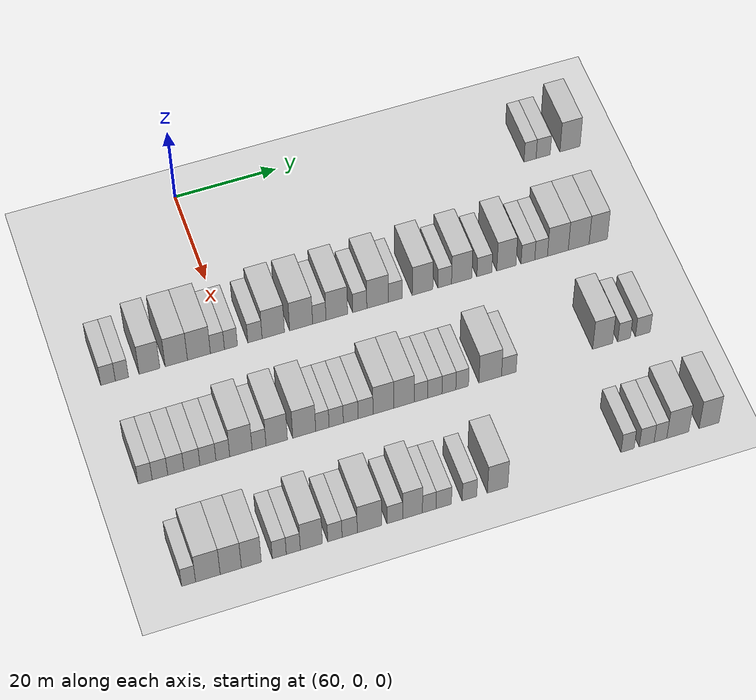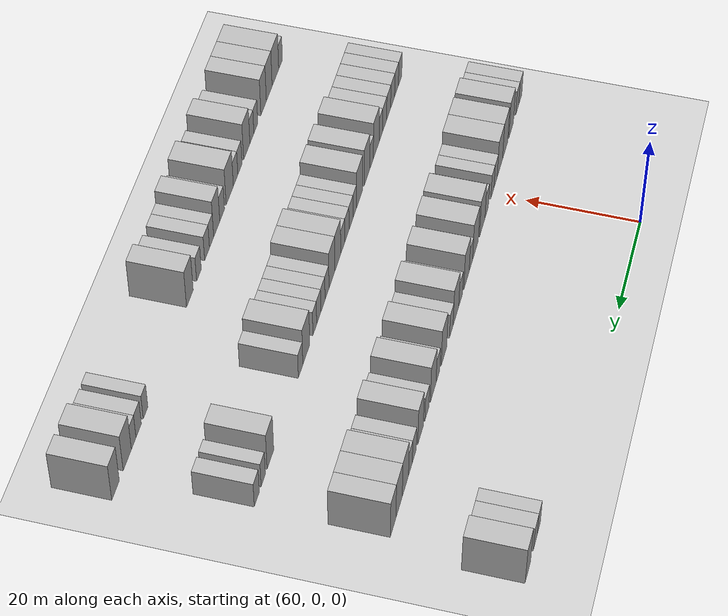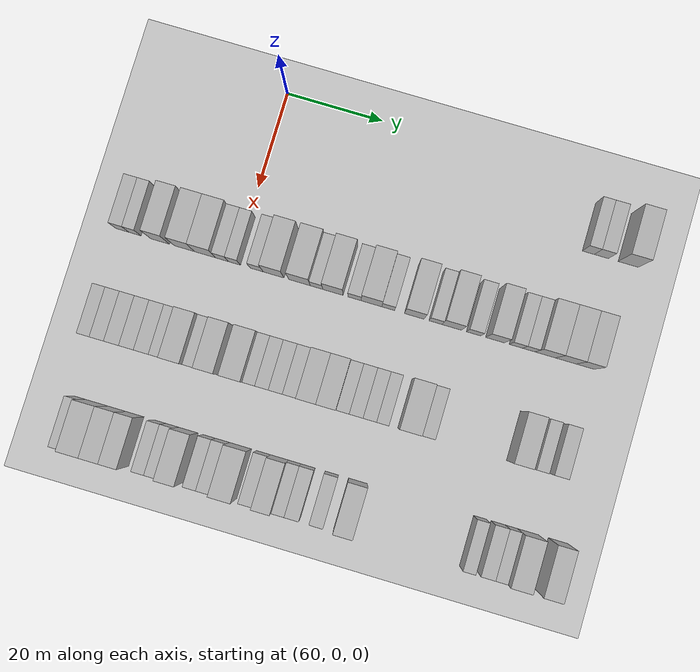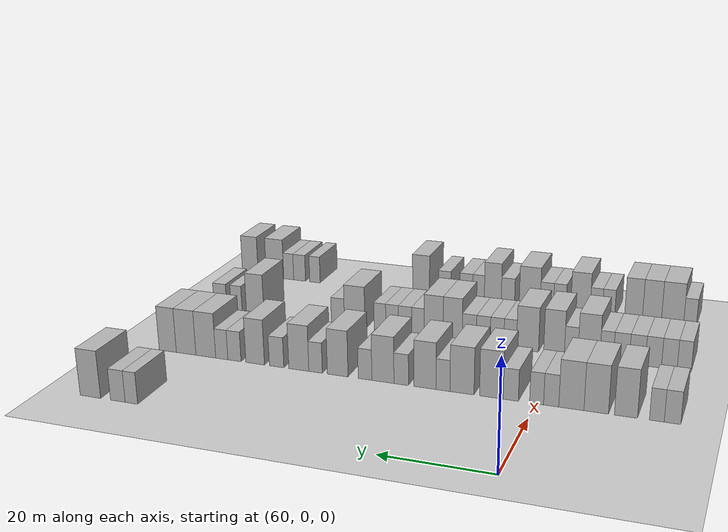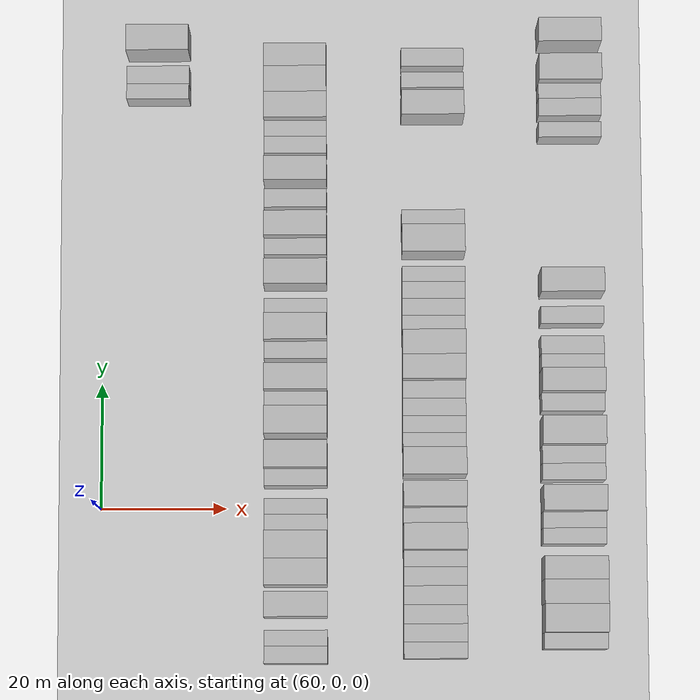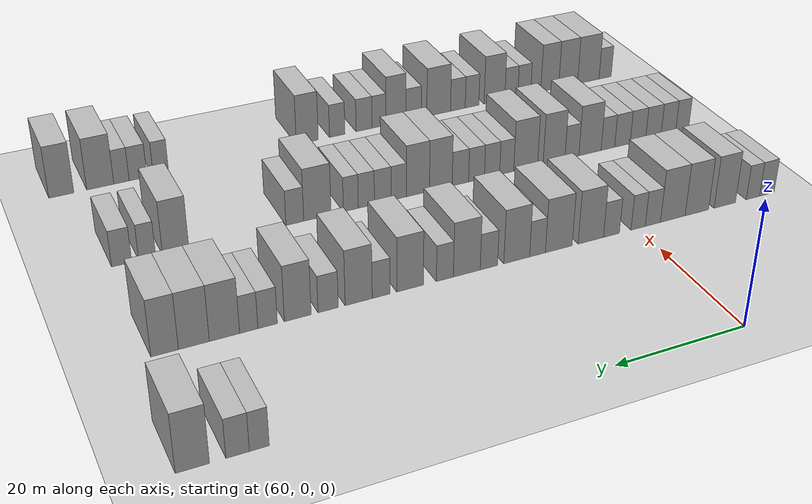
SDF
<sdf version="1.6">
 <world name="default">
  <include>
   <name>ground_plane_2</name>
   <uri>model://HANNAS_ground_plane</uri>
   <pose>100 0 0  0 0 0</pose>
  </include>
  <model name="building_504">
   <static>1</static>
   <pose>69.0000 66.6545 0 0.000000 0.000000 0.000000</pose>
   <link name="link">
    <pose>0 0 3.00 0 0 0</pose>
    <collision name="collision"><geometry><box><size>10.0000 2.4754 6.0000</size></box></geometry></collision>
    <visual name="visual">
     <cast_shadows>0</cast_shadows>
     <geometry><box><size>10.0000 2.4754 6.0000</size></box></geometry>
     <material>
      <script>
       <uri>model://HANNAS_wall/materials/scripts</uri>
       <uri>model://HANNAS_wall/materials/textures</uri>
       <name>vrc/HANNAS_wall</name>
      </script>
     </material>
    </visual>
   </link>
  </model>
  <model name="building_505">
   <static>1</static>
   <pose>69.0000 69.3427 0 0.000000 0.000000 0.000000</pose>
   <link name="link">
    <pose>0 0 3.00 0 0 0</pose>
    <collision name="collision"><geometry><box><size>10.0000 2.9010 6.0000</size></box></geometry></collision>
    <visual name="visual">
     <cast_shadows>0</cast_shadows>
     <geometry><box><size>10.0000 2.9010 6.0000</size></box></geometry>
     <material>
      <script>
       <uri>model://HANNAS_wall/materials/scripts</uri>
       <uri>model://HANNAS_wall/materials/textures</uri>
       <name>vrc/HANNAS_wall</name>
      </script>
     </material>
    </visual>
   </link>
  </model>
  <model name="building_506">
   <static>1</static>
   <pose>69.0000 74.8574 0 0.000000 0.000000 0.000000</pose>
   <link name="link">
    <pose>0 0 4.50 0 0 0</pose>
    <collision name="collision"><geometry><box><size>10.0000 4.1285 9.0000</size></box></geometry></collision>
    <visual name="visual">
     <cast_shadows>0</cast_shadows>
     <geometry><box><size>10.0000 4.1285 9.0000</size></box></geometry>
     <material>
      <script>
       <uri>model://HANNAS_wall/materials/scripts</uri>
       <uri>model://HANNAS_wall/materials/textures</uri>
       <name>vrc/HANNAS_wall</name>
      </script>
     </material>
    </visual>
   </link>
  </model>
  <model name="building_661">
   <static>1</static>
   <pose>91.0000 -23.3035 0 0.000000 0.000000 0.000000</pose>
   <link name="link">
    <pose>0 0 3.00 0 0 0</pose>
    <collision name="collision"><geometry><box><size>10.0000 2.7436 6.0000</size></box></geometry></collision>
    <visual name="visual">
     <cast_shadows>0</cast_shadows>
     <geometry><box><size>10.0000 2.7436 6.0000</size></box></geometry>
     <material>
      <script>
       <uri>model://HANNAS_wall/materials/scripts</uri>
       <uri>model://HANNAS_wall/materials/textures</uri>
       <name>vrc/HANNAS_wall</name>
      </script>
     </material>
    </visual>
   </link>
  </model>
  <model name="building_662">
   <static>1</static>
   <pose>91.0000 -20.6948 0 0.000000 0.000000 0.000000</pose>
   <link name="link">
    <pose>0 0 3.00 0 0 0</pose>
    <collision name="collision"><geometry><box><size>10.0000 2.4738 6.0000</size></box></geometry></collision>
    <visual name="visual">
     <cast_shadows>0</cast_shadows>
     <geometry><box><size>10.0000 2.4738 6.0000</size></box></geometry>
     <material>
      <script>
       <uri>model://HANNAS_wall/materials/scripts</uri>
       <uri>model://HANNAS_wall/materials/textures</uri>
       <name>vrc/HANNAS_wall</name>
      </script>
     </material>
    </visual>
   </link>
  </model>
  <model name="building_663">
   <static>1</static>
   <pose>91.0000 -15.4986 0 0.000000 0.000000 0.000000</pose>
   <link name="link">
    <pose>0 0 4.50 0 0 0</pose>
    <collision name="collision"><geometry><box><size>10.0000 3.9186 9.0000</size></box></geometry></collision>
    <visual name="visual">
     <cast_shadows>0</cast_shadows>
     <geometry><box><size>10.0000 3.9186 9.0000</size></box></geometry>
     <material>
      <script>
       <uri>model://HANNAS_wall/materials/scripts</uri>
       <uri>model://HANNAS_wall/materials/textures</uri>
       <name>vrc/HANNAS_wall</name>
      </script>
     </material>
    </visual>
   </link>
  </model>
  <model name="building_664">
   <static>1</static>
   <pose>91.0000 -10.4303 0 0.000000 0.000000 0.000000</pose>
   <link name="link">
    <pose>0 0 4.50 0 0 0</pose>
    <collision name="collision"><geometry><box><size>10.0000 4.2181 9.0000</size></box></geometry></collision>
    <visual name="visual">
     <cast_shadows>0</cast_shadows>
     <geometry><box><size>10.0000 4.2181 9.0000</size></box></geometry>
     <material>
      <script>
       <uri>model://HANNAS_wall/materials/scripts</uri>
       <uri>model://HANNAS_wall/materials/textures</uri>
       <name>vrc/HANNAS_wall</name>
      </script>
     </material>
    </visual>
   </link>
  </model>
  <model name="building_665">
   <static>1</static>
   <pose>91.0000 -6.1336 0 0.000000 0.000000 0.000000</pose>
   <link name="link">
    <pose>0 0 4.50 0 0 0</pose>
    <collision name="collision"><geometry><box><size>10.0000 4.3752 9.0000</size></box></geometry></collision>
    <visual name="visual">
     <cast_shadows>0</cast_shadows>
     <geometry><box><size>10.0000 4.3752 9.0000</size></box></geometry>
     <material>
      <script>
       <uri>model://HANNAS_wall/materials/scripts</uri>
       <uri>model://HANNAS_wall/materials/textures</uri>
       <name>vrc/HANNAS_wall</name>
      </script>
     </material>
    </visual>
   </link>
  </model>
  <model name="building_666">
   <static>1</static>
   <pose>91.0000 -2.6112 0 0.000000 0.000000 0.000000</pose>
   <link name="link">
    <pose>0 0 3.00 0 0 0</pose>
    <collision name="collision"><geometry><box><size>10.0000 2.6696 6.0000</size></box></geometry></collision>
    <visual name="visual">
     <cast_shadows>0</cast_shadows>
     <geometry><box><size>10.0000 2.6696 6.0000</size></box></geometry>
     <material>
      <script>
       <uri>model://HANNAS_wall/materials/scripts</uri>
       <uri>model://HANNAS_wall/materials/textures</uri>
       <name>vrc/HANNAS_wall</name>
      </script>
     </material>
    </visual>
   </link>
  </model>
  <model name="building_667">
   <static>1</static>
   <pose>91.0000 -0.0387 0 0.000000 0.000000 0.000000</pose>
   <link name="link">
    <pose>0 0 3.00 0 0 0</pose>
    <collision name="collision"><geometry><box><size>10.0000 2.4754 6.0000</size></box></geometry></collision>
    <visual name="visual">
     <cast_shadows>0</cast_shadows>
     <geometry><box><size>10.0000 2.4754 6.0000</size></box></geometry>
     <material>
      <script>
       <uri>model://HANNAS_wall/materials/scripts</uri>
       <uri>model://HANNAS_wall/materials/textures</uri>
       <name>vrc/HANNAS_wall</name>
      </script>
     </material>
    </visual>
   </link>
  </model>
  <model name="building_668">
   <static>1</static>
   <pose>91.0000 4.5630 0 0.000000 0.000000 0.000000</pose>
   <link name="link">
    <pose>0 0 3.00 0 0 0</pose>
    <collision name="collision"><geometry><box><size>10.0000 2.7281 6.0000</size></box></geometry></collision>
    <visual name="visual">
     <cast_shadows>0</cast_shadows>
     <geometry><box><size>10.0000 2.7281 6.0000</size></box></geometry>
     <material>
      <script>
       <uri>model://HANNAS_wall/materials/scripts</uri>
       <uri>model://HANNAS_wall/materials/textures</uri>
       <name>vrc/HANNAS_wall</name>
      </script>
     </material>
    </visual>
   </link>
  </model>
  <model name="building_669">
   <static>1</static>
   <pose>91.0000 8.0719 0 0.000000 0.000000 0.000000</pose>
   <link name="link">
    <pose>0 0 4.50 0 0 0</pose>
    <collision name="collision"><geometry><box><size>10.0000 4.2898 9.0000</size></box></geometry></collision>
    <visual name="visual">
     <cast_shadows>0</cast_shadows>
     <geometry><box><size>10.0000 4.2898 9.0000</size></box></geometry>
     <material>
      <script>
       <uri>model://HANNAS_wall/materials/scripts</uri>
       <uri>model://HANNAS_wall/materials/textures</uri>
       <name>vrc/HANNAS_wall</name>
      </script>
     </material>
    </visual>
   </link>
  </model>
  <model name="building_670">
   <static>1</static>
   <pose>91.0000 13.4341 0 0.000000 0.000000 0.000000</pose>
   <link name="link">
    <pose>0 0 4.50 0 0 0</pose>
    <collision name="collision"><geometry><box><size>10.0000 4.4345 9.0000</size></box></geometry></collision>
    <visual name="visual">
     <cast_shadows>0</cast_shadows>
     <geometry><box><size>10.0000 4.4345 9.0000</size></box></geometry>
     <material>
      <script>
       <uri>model://HANNAS_wall/materials/scripts</uri>
       <uri>model://HANNAS_wall/materials/textures</uri>
       <name>vrc/HANNAS_wall</name>
      </script>
     </material>
    </visual>
   </link>
  </model>
  <model name="building_671">
   <static>1</static>
   <pose>91.0000 16.9446 0 0.000000 0.000000 0.000000</pose>
   <link name="link">
    <pose>0 0 3.00 0 0 0</pose>
    <collision name="collision"><geometry><box><size>10.0000 2.5867 6.0000</size></box></geometry></collision>
    <visual name="visual">
     <cast_shadows>0</cast_shadows>
     <geometry><box><size>10.0000 2.5867 6.0000</size></box></geometry>
     <material>
      <script>
       <uri>model://HANNAS_wall/materials/scripts</uri>
       <uri>model://HANNAS_wall/materials/textures</uri>
       <name>vrc/HANNAS_wall</name>
      </script>
     </material>
    </visual>
   </link>
  </model>
  <model name="building_672">
   <static>1</static>
   <pose>91.0000 20.3265 0 0.000000 0.000000 0.000000</pose>
   <link name="link">
    <pose>0 0 4.50 0 0 0</pose>
    <collision name="collision"><geometry><box><size>10.0000 4.1771 9.0000</size></box></geometry></collision>
    <visual name="visual">
     <cast_shadows>0</cast_shadows>
     <geometry><box><size>10.0000 4.1771 9.0000</size></box></geometry>
     <material>
      <script>
       <uri>model://HANNAS_wall/materials/scripts</uri>
       <uri>model://HANNAS_wall/materials/textures</uri>
       <name>vrc/HANNAS_wall</name>
      </script>
     </material>
    </visual>
   </link>
  </model>
  <model name="building_673">
   <static>1</static>
   <pose>91.0000 24.7904 0 0.000000 0.000000 0.000000</pose>
   <link name="link">
    <pose>0 0 3.00 0 0 0</pose>
    <collision name="collision"><geometry><box><size>10.0000 2.7507 6.0000</size></box></geometry></collision>
    <visual name="visual">
     <cast_shadows>0</cast_shadows>
     <geometry><box><size>10.0000 2.7507 6.0000</size></box></geometry>
     <material>
      <script>
       <uri>model://HANNAS_wall/materials/scripts</uri>
       <uri>model://HANNAS_wall/materials/textures</uri>
       <name>vrc/HANNAS_wall</name>
      </script>
     </material>
    </visual>
   </link>
  </model>
  <model name="building_674">
   <static>1</static>
   <pose>91.0000 28.2809 0 0.000000 0.000000 0.000000</pose>
   <link name="link">
    <pose>0 0 4.50 0 0 0</pose>
    <collision name="collision"><geometry><box><size>10.0000 4.2302 9.0000</size></box></geometry></collision>
    <visual name="visual">
     <cast_shadows>0</cast_shadows>
     <geometry><box><size>10.0000 4.2302 9.0000</size></box></geometry>
     <material>
      <script>
       <uri>model://HANNAS_wall/materials/scripts</uri>
       <uri>model://HANNAS_wall/materials/textures</uri>
       <name>vrc/HANNAS_wall</name>
      </script>
     </material>
    </visual>
   </link>
  </model>
  <model name="building_675">
   <static>1</static>
   <pose>91.0000 31.7131 0 0.000000 0.000000 0.000000</pose>
   <link name="link">
    <pose>0 0 3.00 0 0 0</pose>
    <collision name="collision"><geometry><box><size>10.0000 2.6343 6.0000</size></box></geometry></collision>
    <visual name="visual">
     <cast_shadows>0</cast_shadows>
     <geometry><box><size>10.0000 2.6343 6.0000</size></box></geometry>
     <material>
      <script>
       <uri>model://HANNAS_wall/materials/scripts</uri>
       <uri>model://HANNAS_wall/materials/textures</uri>
       <name>vrc/HANNAS_wall</name>
      </script>
     </material>
    </visual>
   </link>
  </model>
  <model name="building_676">
   <static>1</static>
   <pose>91.0000 37.0513 0 0.000000 0.000000 0.000000</pose>
   <link name="link">
    <pose>0 0 4.50 0 0 0</pose>
    <collision name="collision"><geometry><box><size>10.0000 4.0421 9.0000</size></box></geometry></collision>
    <visual name="visual">
     <cast_shadows>0</cast_shadows>
     <geometry><box><size>10.0000 4.0421 9.0000</size></box></geometry>
     <material>
      <script>
       <uri>model://HANNAS_wall/materials/scripts</uri>
       <uri>model://HANNAS_wall/materials/textures</uri>
       <name>vrc/HANNAS_wall</name>
      </script>
     </material>
    </visual>
   </link>
  </model>
  <model name="building_677">
   <static>1</static>
   <pose>91.0000 41.4131 0 0.000000 0.000000 0.000000</pose>
   <link name="link">
    <pose>0 0 3.00 0 0 0</pose>
    <collision name="collision"><geometry><box><size>10.0000 2.6816 6.0000</size></box></geometry></collision>
    <visual name="visual">
     <cast_shadows>0</cast_shadows>
     <geometry><box><size>10.0000 2.6816 6.0000</size></box></geometry>
     <material>
      <script>
       <uri>model://HANNAS_wall/materials/scripts</uri>
       <uri>model://HANNAS_wall/materials/textures</uri>
       <name>vrc/HANNAS_wall</name>
      </script>
     </material>
    </visual>
   </link>
  </model>
  <model name="building_678">
   <static>1</static>
   <pose>91.0000 44.7580 0 0.000000 0.000000 0.000000</pose>
   <link name="link">
    <pose>0 0 4.50 0 0 0</pose>
    <collision name="collision"><geometry><box><size>10.0000 4.0081 9.0000</size></box></geometry></collision>
    <visual name="visual">
     <cast_shadows>0</cast_shadows>
     <geometry><box><size>10.0000 4.0081 9.0000</size></box></geometry>
     <material>
      <script>
       <uri>model://HANNAS_wall/materials/scripts</uri>
       <uri>model://HANNAS_wall/materials/textures</uri>
       <name>vrc/HANNAS_wall</name>
      </script>
     </material>
    </visual>
   </link>
  </model>
  <model name="building_679">
   <static>1</static>
   <pose>91.0000 49.2320 0 0.000000 0.000000 0.000000</pose>
   <link name="link">
    <pose>0 0 3.00 0 0 0</pose>
    <collision name="collision"><geometry><box><size>10.0000 2.9400 6.0000</size></box></geometry></collision>
    <visual name="visual">
     <cast_shadows>0</cast_shadows>
     <geometry><box><size>10.0000 2.9400 6.0000</size></box></geometry>
     <material>
      <script>
       <uri>model://HANNAS_wall/materials/scripts</uri>
       <uri>model://HANNAS_wall/materials/textures</uri>
       <name>vrc/HANNAS_wall</name>
      </script>
     </material>
    </visual>
   </link>
  </model>
  <model name="building_680">
   <static>1</static>
   <pose>91.0000 53.6119 0 0.000000 0.000000 0.000000</pose>
   <link name="link">
    <pose>0 0 4.50 0 0 0</pose>
    <collision name="collision"><geometry><box><size>10.0000 3.8197 9.0000</size></box></geometry></collision>
    <visual name="visual">
     <cast_shadows>0</cast_shadows>
     <geometry><box><size>10.0000 3.8197 9.0000</size></box></geometry>
     <material>
      <script>
       <uri>model://HANNAS_wall/materials/scripts</uri>
       <uri>model://HANNAS_wall/materials/textures</uri>
       <name>vrc/HANNAS_wall</name>
      </script>
     </material>
    </visual>
   </link>
  </model>
  <model name="building_681">
   <static>1</static>
   <pose>91.0000 57.8907 0 0.000000 0.000000 0.000000</pose>
   <link name="link">
    <pose>0 0 3.00 0 0 0</pose>
    <collision name="collision"><geometry><box><size>10.0000 2.7380 6.0000</size></box></geometry></collision>
    <visual name="visual">
     <cast_shadows>0</cast_shadows>
     <geometry><box><size>10.0000 2.7380 6.0000</size></box></geometry>
     <material>
      <script>
       <uri>model://HANNAS_wall/materials/scripts</uri>
       <uri>model://HANNAS_wall/materials/textures</uri>
       <name>vrc/HANNAS_wall</name>
      </script>
     </material>
    </visual>
   </link>
  </model>
  <model name="building_682">
   <static>1</static>
   <pose>91.0000 60.5299 0 0.000000 0.000000 0.000000</pose>
   <link name="link">
    <pose>0 0 3.00 0 0 0</pose>
    <collision name="collision"><geometry><box><size>10.0000 2.5405 6.0000</size></box></geometry></collision>
    <visual name="visual">
     <cast_shadows>0</cast_shadows>
     <geometry><box><size>10.0000 2.5405 6.0000</size></box></geometry>
     <material>
      <script>
       <uri>model://HANNAS_wall/materials/scripts</uri>
       <uri>model://HANNAS_wall/materials/textures</uri>
       <name>vrc/HANNAS_wall</name>
      </script>
     </material>
    </visual>
   </link>
  </model>
  <model name="building_683">
   <static>1</static>
   <pose>91.0000 63.8856 0 0.000000 0.000000 0.000000</pose>
   <link name="link">
    <pose>0 0 4.50 0 0 0</pose>
    <collision name="collision"><geometry><box><size>10.0000 4.1708 9.0000</size></box></geometry></collision>
    <visual name="visual">
     <cast_shadows>0</cast_shadows>
     <geometry><box><size>10.0000 4.1708 9.0000</size></box></geometry>
     <material>
      <script>
       <uri>model://HANNAS_wall/materials/scripts</uri>
       <uri>model://HANNAS_wall/materials/textures</uri>
       <name>vrc/HANNAS_wall</name>
      </script>
     </material>
    </visual>
   </link>
  </model>
  <model name="building_684">
   <static>1</static>
   <pose>91.0000 68.0590 0 0.000000 0.000000 0.000000</pose>
   <link name="link">
    <pose>0 0 4.50 0 0 0</pose>
    <collision name="collision"><geometry><box><size>10.0000 4.1760 9.0000</size></box></geometry></collision>
    <visual name="visual">
     <cast_shadows>0</cast_shadows>
     <geometry><box><size>10.0000 4.1760 9.0000</size></box></geometry>
     <material>
      <script>
       <uri>model://HANNAS_wall/materials/scripts</uri>
       <uri>model://HANNAS_wall/materials/textures</uri>
       <name>vrc/HANNAS_wall</name>
      </script>
     </material>
    </visual>
   </link>
  </model>
  <model name="building_685">
   <static>1</static>
   <pose>91.0000 71.9850 0 0.000000 0.000000 0.000000</pose>
   <link name="link">
    <pose>0 0 4.50 0 0 0</pose>
    <collision name="collision"><geometry><box><size>10.0000 3.6760 9.0000</size></box></geometry></collision>
    <visual name="visual">
     <cast_shadows>0</cast_shadows>
     <geometry><box><size>10.0000 3.6760 9.0000</size></box></geometry>
     <material>
      <script>
       <uri>model://HANNAS_wall/materials/scripts</uri>
       <uri>model://HANNAS_wall/materials/textures</uri>
       <name>vrc/HANNAS_wall</name>
      </script>
     </material>
    </visual>
   </link>
  </model>
  <model name="building_851">
   <static>1</static>
   <pose>113.0000 -22.6898 0 0.000000 0.000000 0.000000</pose>
   <link name="link">
    <pose>0 0 3.00 0 0 0</pose>
    <collision name="collision"><geometry><box><size>10.0000 2.5700 6.0000</size></box></geometry></collision>
    <visual name="visual">
     <cast_shadows>0</cast_shadows>
     <geometry><box><size>10.0000 2.5700 6.0000</size></box></geometry>
     <material>
      <script>
       <uri>model://HANNAS_wall/materials/scripts</uri>
       <uri>model://HANNAS_wall/materials/textures</uri>
       <name>vrc/HANNAS_wall</name>
      </script>
     </material>
    </visual>
   </link>
  </model>
  <model name="building_852">
   <static>1</static>
   <pose>113.0000 -19.9676 0 0.000000 0.000000 0.000000</pose>
   <link name="link">
    <pose>0 0 3.00 0 0 0</pose>
    <collision name="collision"><geometry><box><size>10.0000 2.8742 6.0000</size></box></geometry></collision>
    <visual name="visual">
     <cast_shadows>0</cast_shadows>
     <geometry><box><size>10.0000 2.8742 6.0000</size></box></geometry>
     <material>
      <script>
       <uri>model://HANNAS_wall/materials/scripts</uri>
       <uri>model://HANNAS_wall/materials/textures</uri>
       <name>vrc/HANNAS_wall</name>
      </script>
     </material>
    </visual>
   </link>
  </model>
  <model name="building_853">
   <static>1</static>
   <pose>113.0000 -17.0374 0 0.000000 0.000000 0.000000</pose>
   <link name="link">
    <pose>0 0 3.00 0 0 0</pose>
    <collision name="collision"><geometry><box><size>10.0000 2.9863 6.0000</size></box></geometry></collision>
    <visual name="visual">
     <cast_shadows>0</cast_shadows>
     <geometry><box><size>10.0000 2.9863 6.0000</size></box></geometry>
     <material>
      <script>
       <uri>model://HANNAS_wall/materials/scripts</uri>
       <uri>model://HANNAS_wall/materials/textures</uri>
       <name>vrc/HANNAS_wall</name>
      </script>
     </material>
    </visual>
   </link>
  </model>
  <model name="building_854">
   <static>1</static>
   <pose>113.0000 -14.0618 0 0.000000 0.000000 0.000000</pose>
   <link name="link">
    <pose>0 0 3.00 0 0 0</pose>
    <collision name="collision"><geometry><box><size>10.0000 2.9648 6.0000</size></box></geometry></collision>
    <visual name="visual">
     <cast_shadows>0</cast_shadows>
     <geometry><box><size>10.0000 2.9648 6.0000</size></box></geometry>
     <material>
      <script>
       <uri>model://HANNAS_wall/materials/scripts</uri>
       <uri>model://HANNAS_wall/materials/textures</uri>
       <name>vrc/HANNAS_wall</name>
      </script>
     </material>
    </visual>
   </link>
  </model>
  <model name="building_855">
   <static>1</static>
   <pose>113.0000 -11.0983 0 0.000000 0.000000 0.000000</pose>
   <link name="link">
    <pose>0 0 3.00 0 0 0</pose>
    <collision name="collision"><geometry><box><size>10.0000 2.9623 6.0000</size></box></geometry></collision>
    <visual name="visual">
     <cast_shadows>0</cast_shadows>
     <geometry><box><size>10.0000 2.9623 6.0000</size></box></geometry>
     <material>
      <script>
       <uri>model://HANNAS_wall/materials/scripts</uri>
       <uri>model://HANNAS_wall/materials/textures</uri>
       <name>vrc/HANNAS_wall</name>
      </script>
     </material>
    </visual>
   </link>
  </model>
  <model name="building_856">
   <static>1</static>
   <pose>113.0000 -8.3364 0 0.000000 0.000000 0.000000</pose>
   <link name="link">
    <pose>0 0 3.00 0 0 0</pose>
    <collision name="collision"><geometry><box><size>10.0000 2.5615 6.0000</size></box></geometry></collision>
    <visual name="visual">
     <cast_shadows>0</cast_shadows>
     <geometry><box><size>10.0000 2.5615 6.0000</size></box></geometry>
     <material>
      <script>
       <uri>model://HANNAS_wall/materials/scripts</uri>
       <uri>model://HANNAS_wall/materials/textures</uri>
       <name>vrc/HANNAS_wall</name>
      </script>
     </material>
    </visual>
   </link>
  </model>
  <model name="building_857">
   <static>1</static>
   <pose>113.0000 -4.9729 0 0.000000 0.000000 0.000000</pose>
   <link name="link">
    <pose>0 0 4.50 0 0 0</pose>
    <collision name="collision"><geometry><box><size>10.0000 4.1655 9.0000</size></box></geometry></collision>
    <visual name="visual">
     <cast_shadows>0</cast_shadows>
     <geometry><box><size>10.0000 4.1655 9.0000</size></box></geometry>
     <material>
      <script>
       <uri>model://HANNAS_wall/materials/scripts</uri>
       <uri>model://HANNAS_wall/materials/textures</uri>
       <name>vrc/HANNAS_wall</name>
      </script>
     </material>
    </visual>
   </link>
  </model>
  <model name="building_858">
   <static>1</static>
   <pose>113.0000 -1.5920 0 0.000000 0.000000 0.000000</pose>
   <link name="link">
    <pose>0 0 3.00 0 0 0</pose>
    <collision name="collision"><geometry><box><size>10.0000 2.5965 6.0000</size></box></geometry></collision>
    <visual name="visual">
     <cast_shadows>0</cast_shadows>
     <geometry><box><size>10.0000 2.5965 6.0000</size></box></geometry>
     <material>
      <script>
       <uri>model://HANNAS_wall/materials/scripts</uri>
       <uri>model://HANNAS_wall/materials/textures</uri>
       <name>vrc/HANNAS_wall</name>
      </script>
     </material>
    </visual>
   </link>
  </model>
  <model name="building_859">
   <static>1</static>
   <pose>113.0000 1.7086 0 0.000000 0.000000 0.000000</pose>
   <link name="link">
    <pose>0 0 4.50 0 0 0</pose>
    <collision name="collision"><geometry><box><size>10.0000 4.0046 9.0000</size></box></geometry></collision>
    <visual name="visual">
     <cast_shadows>0</cast_shadows>
     <geometry><box><size>10.0000 4.0046 9.0000</size></box></geometry>
     <material>
      <script>
       <uri>model://HANNAS_wall/materials/scripts</uri>
       <uri>model://HANNAS_wall/materials/textures</uri>
       <name>vrc/HANNAS_wall</name>
      </script>
     </material>
    </visual>
   </link>
  </model>
  <model name="building_860">
   <static>1</static>
   <pose>113.0000 6.8663 0 0.000000 0.000000 0.000000</pose>
   <link name="link">
    <pose>0 0 4.50 0 0 0</pose>
    <collision name="collision"><geometry><box><size>10.0000 4.3108 9.0000</size></box></geometry></collision>
    <visual name="visual">
     <cast_shadows>0</cast_shadows>
     <geometry><box><size>10.0000 4.3108 9.0000</size></box></geometry>
     <material>
      <script>
       <uri>model://HANNAS_wall/materials/scripts</uri>
       <uri>model://HANNAS_wall/materials/textures</uri>
       <name>vrc/HANNAS_wall</name>
      </script>
     </material>
    </visual>
   </link>
  </model>
  <model name="building_861">
   <static>1</static>
   <pose>113.0000 10.2790 0 0.000000 0.000000 0.000000</pose>
   <link name="link">
    <pose>0 0 3.00 0 0 0</pose>
    <collision name="collision"><geometry><box><size>10.0000 2.5145 6.0000</size></box></geometry></collision>
    <visual name="visual">
     <cast_shadows>0</cast_shadows>
     <geometry><box><size>10.0000 2.5145 6.0000</size></box></geometry>
     <material>
      <script>
       <uri>model://HANNAS_wall/materials/scripts</uri>
       <uri>model://HANNAS_wall/materials/textures</uri>
       <name>vrc/HANNAS_wall</name>
      </script>
     </material>
    </visual>
   </link>
  </model>
  <model name="building_862">
   <static>1</static>
   <pose>113.0000 12.8808 0 0.000000 0.000000 0.000000</pose>
   <link name="link">
    <pose>0 0 3.00 0 0 0</pose>
    <collision name="collision"><geometry><box><size>10.0000 2.6892 6.0000</size></box></geometry></collision>
    <visual name="visual">
     <cast_shadows>0</cast_shadows>
     <geometry><box><size>10.0000 2.6892 6.0000</size></box></geometry>
     <material>
      <script>
       <uri>model://HANNAS_wall/materials/scripts</uri>
       <uri>model://HANNAS_wall/materials/textures</uri>
       <name>vrc/HANNAS_wall</name>
      </script>
     </material>
    </visual>
   </link>
  </model>
  <model name="building_863">
   <static>1</static>
   <pose>113.0000 15.6188 0 0.000000 0.000000 0.000000</pose>
   <link name="link">
    <pose>0 0 3.00 0 0 0</pose>
    <collision name="collision"><geometry><box><size>10.0000 2.7867 6.0000</size></box></geometry></collision>
    <visual name="visual">
     <cast_shadows>0</cast_shadows>
     <geometry><box><size>10.0000 2.7867 6.0000</size></box></geometry>
     <material>
      <script>
       <uri>model://HANNAS_wall/materials/scripts</uri>
       <uri>model://HANNAS_wall/materials/textures</uri>
       <name>vrc/HANNAS_wall</name>
      </script>
     </material>
    </visual>
   </link>
  </model>
  <model name="building_864">
   <static>1</static>
   <pose>113.0000 18.4348 0 0.000000 0.000000 0.000000</pose>
   <link name="link">
    <pose>0 0 3.00 0 0 0</pose>
    <collision name="collision"><geometry><box><size>10.0000 2.8454 6.0000</size></box></geometry></collision>
    <visual name="visual">
     <cast_shadows>0</cast_shadows>
     <geometry><box><size>10.0000 2.8454 6.0000</size></box></geometry>
     <material>
      <script>
       <uri>model://HANNAS_wall/materials/scripts</uri>
       <uri>model://HANNAS_wall/materials/textures</uri>
       <name>vrc/HANNAS_wall</name>
      </script>
     </material>
    </visual>
   </link>
  </model>
  <model name="building_865">
   <static>1</static>
   <pose>113.0000 21.8061 0 0.000000 0.000000 0.000000</pose>
   <link name="link">
    <pose>0 0 4.50 0 0 0</pose>
    <collision name="collision"><geometry><box><size>10.0000 3.8971 9.0000</size></box></geometry></collision>
    <visual name="visual">
     <cast_shadows>0</cast_shadows>
     <geometry><box><size>10.0000 3.8971 9.0000</size></box></geometry>
     <material>
      <script>
       <uri>model://HANNAS_wall/materials/scripts</uri>
       <uri>model://HANNAS_wall/materials/textures</uri>
       <name>vrc/HANNAS_wall</name>
      </script>
     </material>
    </visual>
   </link>
  </model>
  <model name="building_866">
   <static>1</static>
   <pose>113.0000 25.7085 0 0.000000 0.000000 0.000000</pose>
   <link name="link">
    <pose>0 0 4.50 0 0 0</pose>
    <collision name="collision"><geometry><box><size>10.0000 3.9079 9.0000</size></box></geometry></collision>
    <visual name="visual">
     <cast_shadows>0</cast_shadows>
     <geometry><box><size>10.0000 3.9079 9.0000</size></box></geometry>
     <material>
      <script>
       <uri>model://HANNAS_wall/materials/scripts</uri>
       <uri>model://HANNAS_wall/materials/textures</uri>
       <name>vrc/HANNAS_wall</name>
      </script>
     </material>
    </visual>
   </link>
  </model>
  <model name="building_867">
   <static>1</static>
   <pose>113.0000 28.9500 0 0.000000 0.000000 0.000000</pose>
   <link name="link">
    <pose>0 0 3.00 0 0 0</pose>
    <collision name="collision"><geometry><box><size>10.0000 2.5750 6.0000</size></box></geometry></collision>
    <visual name="visual">
     <cast_shadows>0</cast_shadows>
     <geometry><box><size>10.0000 2.5750 6.0000</size></box></geometry>
     <material>
      <script>
       <uri>model://HANNAS_wall/materials/scripts</uri>
       <uri>model://HANNAS_wall/materials/textures</uri>
       <name>vrc/HANNAS_wall</name>
      </script>
     </material>
    </visual>
   </link>
  </model>
  <model name="building_868">
   <static>1</static>
   <pose>113.0000 31.6143 0 0.000000 0.000000 0.000000</pose>
   <link name="link">
    <pose>0 0 3.00 0 0 0</pose>
    <collision name="collision"><geometry><box><size>10.0000 2.7536 6.0000</size></box></geometry></collision>
    <visual name="visual">
     <cast_shadows>0</cast_shadows>
     <geometry><box><size>10.0000 2.7536 6.0000</size></box></geometry>
     <material>
      <script>
       <uri>model://HANNAS_wall/materials/scripts</uri>
       <uri>model://HANNAS_wall/materials/textures</uri>
       <name>vrc/HANNAS_wall</name>
      </script>
     </material>
    </visual>
   </link>
  </model>
  <model name="building_869">
   <static>1</static>
   <pose>113.0000 34.3244 0 0.000000 0.000000 0.000000</pose>
   <link name="link">
    <pose>0 0 3.00 0 0 0</pose>
    <collision name="collision"><geometry><box><size>10.0000 2.6665 6.0000</size></box></geometry></collision>
    <visual name="visual">
     <cast_shadows>0</cast_shadows>
     <geometry><box><size>10.0000 2.6665 6.0000</size></box></geometry>
     <material>
      <script>
       <uri>model://HANNAS_wall/materials/scripts</uri>
       <uri>model://HANNAS_wall/materials/textures</uri>
       <name>vrc/HANNAS_wall</name>
      </script>
     </material>
    </visual>
   </link>
  </model>
  <model name="building_870">
   <static>1</static>
   <pose>113.0000 36.8771 0 0.000000 0.000000 0.000000</pose>
   <link name="link">
    <pose>0 0 3.00 0 0 0</pose>
    <collision name="collision"><geometry><box><size>10.0000 2.4390 6.0000</size></box></geometry></collision>
    <visual name="visual">
     <cast_shadows>0</cast_shadows>
     <geometry><box><size>10.0000 2.4390 6.0000</size></box></geometry>
     <material>
      <script>
       <uri>model://HANNAS_wall/materials/scripts</uri>
       <uri>model://HANNAS_wall/materials/textures</uri>
       <name>vrc/HANNAS_wall</name>
      </script>
     </material>
    </visual>
   </link>
  </model>
  <model name="building_871">
   <static>1</static>
   <pose>113.0000 42.2794 0 0.000000 0.000000 0.000000</pose>
   <link name="link">
    <pose>0 0 4.50 0 0 0</pose>
    <collision name="collision"><geometry><box><size>10.0000 4.3655 9.0000</size></box></geometry></collision>
    <visual name="visual">
     <cast_shadows>0</cast_shadows>
     <geometry><box><size>10.0000 4.3655 9.0000</size></box></geometry>
     <material>
      <script>
       <uri>model://HANNAS_wall/materials/scripts</uri>
       <uri>model://HANNAS_wall/materials/textures</uri>
       <name>vrc/HANNAS_wall</name>
      </script>
     </material>
    </visual>
   </link>
  </model>
  <model name="building_872">
   <static>1</static>
   <pose>113.0000 45.8732 0 0.000000 0.000000 0.000000</pose>
   <link name="link">
    <pose>0 0 3.00 0 0 0</pose>
    <collision name="collision"><geometry><box><size>10.0000 2.8222 6.0000</size></box></geometry></collision>
    <visual name="visual">
     <cast_shadows>0</cast_shadows>
     <geometry><box><size>10.0000 2.8222 6.0000</size></box></geometry>
     <material>
      <script>
       <uri>model://HANNAS_wall/materials/scripts</uri>
       <uri>model://HANNAS_wall/materials/textures</uri>
       <name>vrc/HANNAS_wall</name>
      </script>
     </material>
    </visual>
   </link>
  </model>
  <model name="building_873">
   <static>1</static>
   <pose>113.0000 64.1639 0 0.000000 0.000000 0.000000</pose>
   <link name="link">
    <pose>0 0 4.50 0 0 0</pose>
    <collision name="collision"><geometry><box><size>10.0000 3.9197 9.0000</size></box></geometry></collision>
    <visual name="visual">
     <cast_shadows>0</cast_shadows>
     <geometry><box><size>10.0000 3.9197 9.0000</size></box></geometry>
     <material>
      <script>
       <uri>model://HANNAS_wall/materials/scripts</uri>
       <uri>model://HANNAS_wall/materials/textures</uri>
       <name>vrc/HANNAS_wall</name>
      </script>
     </material>
    </visual>
   </link>
  </model>
  <model name="building_874">
   <static>1</static>
   <pose>113.0000 68.3686 0 0.000000 0.000000 0.000000</pose>
   <link name="link">
    <pose>0 0 3.00 0 0 0</pose>
    <collision name="collision"><geometry><box><size>10.0000 2.4898 6.0000</size></box></geometry></collision>
    <visual name="visual">
     <cast_shadows>0</cast_shadows>
     <geometry><box><size>10.0000 2.4898 6.0000</size></box></geometry>
     <material>
      <script>
       <uri>model://HANNAS_wall/materials/scripts</uri>
       <uri>model://HANNAS_wall/materials/textures</uri>
       <name>vrc/HANNAS_wall</name>
      </script>
     </material>
    </visual>
   </link>
  </model>
  <model name="building_875">
   <static>1</static>
   <pose>113.0000 72.0730 0 0.000000 0.000000 0.000000</pose>
   <link name="link">
    <pose>0 0 3.00 0 0 0</pose>
    <collision name="collision"><geometry><box><size>10.0000 2.9189 6.0000</size></box></geometry></collision>
    <visual name="visual">
     <cast_shadows>0</cast_shadows>
     <geometry><box><size>10.0000 2.9189 6.0000</size></box></geometry>
     <material>
      <script>
       <uri>model://HANNAS_wall/materials/scripts</uri>
       <uri>model://HANNAS_wall/materials/textures</uri>
       <name>vrc/HANNAS_wall</name>
      </script>
     </material>
    </visual>
   </link>
  </model>
  <model name="building_1020">
   <static>1</static>
   <pose>135.0000 -21.2730 0 0.000000 0.000000 0.000000</pose>
   <link name="link">
    <pose>0 0 3.00 0 0 0</pose>
    <collision name="collision"><geometry><box><size>10.0000 2.5220 6.0000</size></box></geometry></collision>
    <visual name="visual">
     <cast_shadows>0</cast_shadows>
     <geometry><box><size>10.0000 2.5220 6.0000</size></box></geometry>
     <material>
      <script>
       <uri>model://HANNAS_wall/materials/scripts</uri>
       <uri>model://HANNAS_wall/materials/textures</uri>
       <name>vrc/HANNAS_wall</name>
      </script>
     </material>
    </visual>
   </link>
  </model>
  <model name="building_1021">
   <static>1</static>
   <pose>135.0000 -17.7950 0 0.000000 0.000000 0.000000</pose>
   <link name="link">
    <pose>0 0 4.50 0 0 0</pose>
    <collision name="collision"><geometry><box><size>10.0000 4.4339 9.0000</size></box></geometry></collision>
    <visual name="visual">
     <cast_shadows>0</cast_shadows>
     <geometry><box><size>10.0000 4.4339 9.0000</size></box></geometry>
     <material>
      <script>
       <uri>model://HANNAS_wall/materials/scripts</uri>
       <uri>model://HANNAS_wall/materials/textures</uri>
       <name>vrc/HANNAS_wall</name>
      </script>
     </material>
    </visual>
   </link>
  </model>
  <model name="building_1022">
   <static>1</static>
   <pose>135.0000 -13.6603 0 0.000000 0.000000 0.000000</pose>
   <link name="link">
    <pose>0 0 4.50 0 0 0</pose>
    <collision name="collision"><geometry><box><size>10.0000 3.8355 9.0000</size></box></geometry></collision>
    <visual name="visual">
     <cast_shadows>0</cast_shadows>
     <geometry><box><size>10.0000 3.8355 9.0000</size></box></geometry>
     <material>
      <script>
       <uri>model://HANNAS_wall/materials/scripts</uri>
       <uri>model://HANNAS_wall/materials/textures</uri>
       <name>vrc/HANNAS_wall</name>
      </script>
     </material>
    </visual>
   </link>
  </model>
  <model name="building_1023">
   <static>1</static>
   <pose>135.0000 -9.9367 0 0.000000 0.000000 0.000000</pose>
   <link name="link">
    <pose>0 0 4.50 0 0 0</pose>
    <collision name="collision"><geometry><box><size>10.0000 3.6117 9.0000</size></box></geometry></collision>
    <visual name="visual">
     <cast_shadows>0</cast_shadows>
     <geometry><box><size>10.0000 3.6117 9.0000</size></box></geometry>
     <material>
      <script>
       <uri>model://HANNAS_wall/materials/scripts</uri>
       <uri>model://HANNAS_wall/materials/textures</uri>
       <name>vrc/HANNAS_wall</name>
      </script>
     </material>
    </visual>
   </link>
  </model>
  <model name="building_1024">
   <static>1</static>
   <pose>135.0000 -4.8567 0 0.000000 0.000000 0.000000</pose>
   <link name="link">
    <pose>0 0 3.00 0 0 0</pose>
    <collision name="collision"><geometry><box><size>10.0000 2.5483 6.0000</size></box></geometry></collision>
    <visual name="visual">
     <cast_shadows>0</cast_shadows>
     <geometry><box><size>10.0000 2.5483 6.0000</size></box></geometry>
     <material>
      <script>
       <uri>model://HANNAS_wall/materials/scripts</uri>
       <uri>model://HANNAS_wall/materials/textures</uri>
       <name>vrc/HANNAS_wall</name>
      </script>
     </material>
    </visual>
   </link>
  </model>
  <model name="building_1025">
   <static>1</static>
   <pose>135.0000 -2.3040 0 0.000000 0.000000 0.000000</pose>
   <link name="link">
    <pose>0 0 3.00 0 0 0</pose>
    <collision name="collision"><geometry><box><size>10.0000 2.5570 6.0000</size></box></geometry></collision>
    <visual name="visual">
     <cast_shadows>0</cast_shadows>
     <geometry><box><size>10.0000 2.5570 6.0000</size></box></geometry>
     <material>
      <script>
       <uri>model://HANNAS_wall/materials/scripts</uri>
       <uri>model://HANNAS_wall/materials/textures</uri>
       <name>vrc/HANNAS_wall</name>
      </script>
     </material>
    </visual>
   </link>
  </model>
  <model name="building_1026">
   <static>1</static>
   <pose>135.0000 0.9877 0 0.000000 0.000000 0.000000</pose>
   <link name="link">
    <pose>0 0 4.50 0 0 0</pose>
    <collision name="collision"><geometry><box><size>10.0000 4.0264 9.0000</size></box></geometry></collision>
    <visual name="visual">
     <cast_shadows>0</cast_shadows>
     <geometry><box><size>10.0000 4.0264 9.0000</size></box></geometry>
     <material>
      <script>
       <uri>model://HANNAS_wall/materials/scripts</uri>
       <uri>model://HANNAS_wall/materials/textures</uri>
       <name>vrc/HANNAS_wall</name>
      </script>
     </material>
    </visual>
   </link>
  </model>
  <model name="building_1027">
   <static>1</static>
   <pose>135.0000 5.3169 0 0.000000 0.000000 0.000000</pose>
   <link name="link">
    <pose>0 0 3.00 0 0 0</pose>
    <collision name="collision"><geometry><box><size>10.0000 2.6319 6.0000</size></box></geometry></collision>
    <visual name="visual">
     <cast_shadows>0</cast_shadows>
     <geometry><box><size>10.0000 2.6319 6.0000</size></box></geometry>
     <material>
      <script>
       <uri>model://HANNAS_wall/materials/scripts</uri>
       <uri>model://HANNAS_wall/materials/textures</uri>
       <name>vrc/HANNAS_wall</name>
      </script>
     </material>
    </visual>
   </link>
  </model>
  <model name="building_1028">
   <static>1</static>
   <pose>135.0000 8.0341 0 0.000000 0.000000 0.000000</pose>
   <link name="link">
    <pose>0 0 3.00 0 0 0</pose>
    <collision name="collision"><geometry><box><size>10.0000 2.8024 6.0000</size></box></geometry></collision>
    <visual name="visual">
     <cast_shadows>0</cast_shadows>
     <geometry><box><size>10.0000 2.8024 6.0000</size></box></geometry>
     <material>
      <script>
       <uri>model://HANNAS_wall/materials/scripts</uri>
       <uri>model://HANNAS_wall/materials/textures</uri>
       <name>vrc/HANNAS_wall</name>
      </script>
     </material>
    </visual>
   </link>
  </model>
  <model name="building_1029">
   <static>1</static>
   <pose>135.0000 11.6775 0 0.000000 0.000000 0.000000</pose>
   <link name="link">
    <pose>0 0 4.50 0 0 0</pose>
    <collision name="collision"><geometry><box><size>10.0000 4.4844 9.0000</size></box></geometry></collision>
    <visual name="visual">
     <cast_shadows>0</cast_shadows>
     <geometry><box><size>10.0000 4.4844 9.0000</size></box></geometry>
     <material>
      <script>
       <uri>model://HANNAS_wall/materials/scripts</uri>
       <uri>model://HANNAS_wall/materials/textures</uri>
       <name>vrc/HANNAS_wall</name>
      </script>
     </material>
    </visual>
   </link>
  </model>
  <model name="building_1030">
   <static>1</static>
   <pose>135.0000 16.3606 0 0.000000 0.000000 0.000000</pose>
   <link name="link">
    <pose>0 0 3.00 0 0 0</pose>
    <collision name="collision"><geometry><box><size>10.0000 2.8820 6.0000</size></box></geometry></collision>
    <visual name="visual">
     <cast_shadows>0</cast_shadows>
     <geometry><box><size>10.0000 2.8820 6.0000</size></box></geometry>
     <material>
      <script>
       <uri>model://HANNAS_wall/materials/scripts</uri>
       <uri>model://HANNAS_wall/materials/textures</uri>
       <name>vrc/HANNAS_wall</name>
      </script>
     </material>
    </visual>
   </link>
  </model>
  <model name="building_1031">
   <static>1</static>
   <pose>135.0000 19.6417 0 0.000000 0.000000 0.000000</pose>
   <link name="link">
    <pose>0 0 4.50 0 0 0</pose>
    <collision name="collision"><geometry><box><size>10.0000 3.6802 9.0000</size></box></geometry></collision>
    <visual name="visual">
     <cast_shadows>0</cast_shadows>
     <geometry><box><size>10.0000 3.6802 9.0000</size></box></geometry>
     <material>
      <script>
       <uri>model://HANNAS_wall/materials/scripts</uri>
       <uri>model://HANNAS_wall/materials/textures</uri>
       <name>vrc/HANNAS_wall</name>
      </script>
     </material>
    </visual>
   </link>
  </model>
  <model name="building_1032">
   <static>1</static>
   <pose>135.0000 22.7504 0 0.000000 0.000000 0.000000</pose>
   <link name="link">
    <pose>0 0 3.00 0 0 0</pose>
    <collision name="collision"><geometry><box><size>10.0000 2.5371 6.0000</size></box></geometry></collision>
    <visual name="visual">
     <cast_shadows>0</cast_shadows>
     <geometry><box><size>10.0000 2.5371 6.0000</size></box></geometry>
     <material>
      <script>
       <uri>model://HANNAS_wall/materials/scripts</uri>
       <uri>model://HANNAS_wall/materials/textures</uri>
       <name>vrc/HANNAS_wall</name>
      </script>
     </material>
    </visual>
   </link>
  </model>
  <model name="building_1033">
   <static>1</static>
   <pose>135.0000 25.4547 0 0.000000 0.000000 0.000000</pose>
   <link name="link">
    <pose>0 0 3.00 0 0 0</pose>
    <collision name="collision"><geometry><box><size>10.0000 2.8715 6.0000</size></box></geometry></collision>
    <visual name="visual">
     <cast_shadows>0</cast_shadows>
     <geometry><box><size>10.0000 2.8715 6.0000</size></box></geometry>
     <material>
      <script>
       <uri>model://HANNAS_wall/materials/scripts</uri>
       <uri>model://HANNAS_wall/materials/textures</uri>
       <name>vrc/HANNAS_wall</name>
      </script>
     </material>
    </visual>
   </link>
  </model>
  <model name="building_1034">
   <static>1</static>
   <pose>135.0000 30.2599 0 0.000000 0.000000 0.000000</pose>
   <link name="link">
    <pose>0 0 3.00 0 0 0</pose>
    <collision name="collision"><geometry><box><size>10.0000 2.7389 6.0000</size></box></geometry></collision>
    <visual name="visual">
     <cast_shadows>0</cast_shadows>
     <geometry><box><size>10.0000 2.7389 6.0000</size></box></geometry>
     <material>
      <script>
       <uri>model://HANNAS_wall/materials/scripts</uri>
       <uri>model://HANNAS_wall/materials/textures</uri>
       <name>vrc/HANNAS_wall</name>
      </script>
     </material>
    </visual>
   </link>
  </model>
  <model name="building_1035">
   <static>1</static>
   <pose>135.0000 35.5488 0 0.000000 0.000000 0.000000</pose>
   <link name="link">
    <pose>0 0 4.50 0 0 0</pose>
    <collision name="collision"><geometry><box><size>10.0000 3.8390 9.0000</size></box></geometry></collision>
    <visual name="visual">
     <cast_shadows>0</cast_shadows>
     <geometry><box><size>10.0000 3.8390 9.0000</size></box></geometry>
     <material>
      <script>
       <uri>model://HANNAS_wall/materials/scripts</uri>
       <uri>model://HANNAS_wall/materials/textures</uri>
       <name>vrc/HANNAS_wall</name>
      </script>
     </material>
    </visual>
   </link>
  </model>
  <model name="building_1036">
   <static>1</static>
   <pose>135.0000 60.2211 0 0.000000 0.000000 0.000000</pose>
   <link name="link">
    <pose>0 0 3.00 0 0 0</pose>
    <collision name="collision"><geometry><box><size>10.0000 2.5019 6.0000</size></box></geometry></collision>
    <visual name="visual">
     <cast_shadows>0</cast_shadows>
     <geometry><box><size>10.0000 2.5019 6.0000</size></box></geometry>
     <material>
      <script>
       <uri>model://HANNAS_wall/materials/scripts</uri>
       <uri>model://HANNAS_wall/materials/textures</uri>
       <name>vrc/HANNAS_wall</name>
      </script>
     </material>
    </visual>
   </link>
  </model>
  <model name="building_1037">
   <static>1</static>
   <pose>135.0000 63.8970 0 0.000000 0.000000 0.000000</pose>
   <link name="link">
    <pose>0 0 3.00 0 0 0</pose>
    <collision name="collision"><geometry><box><size>10.0000 2.8498 6.0000</size></box></geometry></collision>
    <visual name="visual">
     <cast_shadows>0</cast_shadows>
     <geometry><box><size>10.0000 2.8498 6.0000</size></box></geometry>
     <material>
      <script>
       <uri>model://HANNAS_wall/materials/scripts</uri>
       <uri>model://HANNAS_wall/materials/textures</uri>
       <name>vrc/HANNAS_wall</name>
      </script>
     </material>
    </visual>
   </link>
  </model>
  <model name="building_1038">
   <static>1</static>
   <pose>135.0000 66.5364 0 0.000000 0.000000 0.000000</pose>
   <link name="link">
    <pose>0 0 3.00 0 0 0</pose>
    <collision name="collision"><geometry><box><size>10.0000 2.4291 6.0000</size></box></geometry></collision>
    <visual name="visual">
     <cast_shadows>0</cast_shadows>
     <geometry><box><size>10.0000 2.4291 6.0000</size></box></geometry>
     <material>
      <script>
       <uri>model://HANNAS_wall/materials/scripts</uri>
       <uri>model://HANNAS_wall/materials/textures</uri>
       <name>vrc/HANNAS_wall</name>
      </script>
     </material>
    </visual>
   </link>
  </model>
  <model name="building_1039">
   <static>1</static>
   <pose>135.0000 69.8775 0 0.000000 0.000000 0.000000</pose>
   <link name="link">
    <pose>0 0 4.50 0 0 0</pose>
    <collision name="collision"><geometry><box><size>10.0000 4.2531 9.0000</size></box></geometry></collision>
    <visual name="visual">
     <cast_shadows>0</cast_shadows>
     <geometry><box><size>10.0000 4.2531 9.0000</size></box></geometry>
     <material>
      <script>
       <uri>model://HANNAS_wall/materials/scripts</uri>
       <uri>model://HANNAS_wall/materials/textures</uri>
       <name>vrc/HANNAS_wall</name>
      </script>
     </material>
    </visual>
   </link>
  </model>
  <model name="building_1040">
   <static>1</static>
   <pose>135.0000 75.9345 0 0.000000 0.000000 0.000000</pose>
   <link name="link">
    <pose>0 0 4.50 0 0 0</pose>
    <collision name="collision"><geometry><box><size>10.0000 3.8608 9.0000</size></box></geometry></collision>
    <visual name="visual">
     <cast_shadows>0</cast_shadows>
     <geometry><box><size>10.0000 3.8608 9.0000</size></box></geometry>
     <material>
      <script>
       <uri>model://HANNAS_wall/materials/scripts</uri>
       <uri>model://HANNAS_wall/materials/textures</uri>
       <name>vrc/HANNAS_wall</name>
      </script>
     </material>
    </visual>
   </link>
  </model>
 </world>
</sdf>
